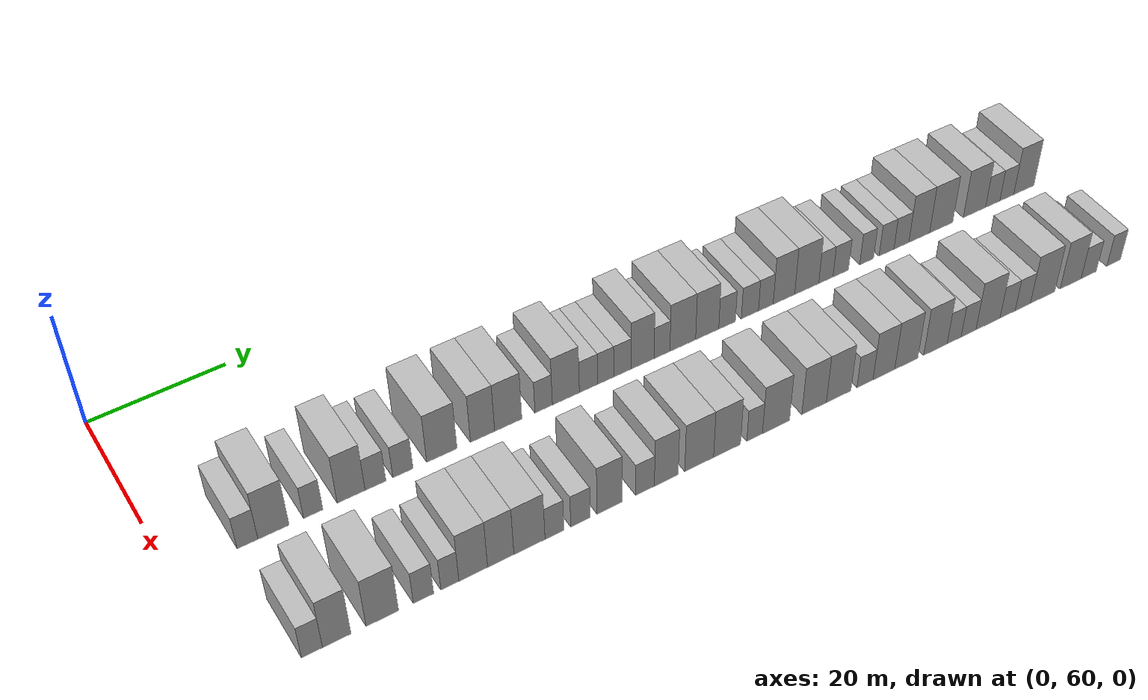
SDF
<sdf version="1.6">
 <world name="default">
  <model name="building_67">
   <static>1</static>
   <pose>25.0000 70.0338 0 0.000000 0.000000 0.000000</pose>
   <link name="link">
    <pose>0 0 3.00 0 0 0</pose>
    <collision name="collision"><geometry><box><size>10.0000 2.8254 6.0000</size></box></geometry></collision>
    <visual name="visual">
     <cast_shadows>0</cast_shadows>
     <geometry><box><size>10.0000 2.8254 6.0000</size></box></geometry>
     <material>
      <script>
       <uri>model://HANNAS_wall/materials/scripts</uri>
       <uri>model://HANNAS_wall/materials/textures</uri>
       <name>vrc/HANNAS_wall</name>
      </script>
     </material>
    </visual>
   </link>
  </model>
  <model name="building_68">
   <static>1</static>
   <pose>25.0000 73.5772 0 0.000000 0.000000 0.000000</pose>
   <link name="link">
    <pose>0 0 4.50 0 0 0</pose>
    <collision name="collision"><geometry><box><size>10.0000 4.2613 9.0000</size></box></geometry></collision>
    <visual name="visual">
     <cast_shadows>0</cast_shadows>
     <geometry><box><size>10.0000 4.2613 9.0000</size></box></geometry>
     <material>
      <script>
       <uri>model://HANNAS_wall/materials/scripts</uri>
       <uri>model://HANNAS_wall/materials/textures</uri>
       <name>vrc/HANNAS_wall</name>
      </script>
     </material>
    </visual>
   </link>
  </model>
  <model name="building_69">
   <static>1</static>
   <pose>25.0000 79.0530 0 0.000000 0.000000 0.000000</pose>
   <link name="link">
    <pose>0 0 3.00 0 0 0</pose>
    <collision name="collision"><geometry><box><size>10.0000 2.6903 6.0000</size></box></geometry></collision>
    <visual name="visual">
     <cast_shadows>0</cast_shadows>
     <geometry><box><size>10.0000 2.6903 6.0000</size></box></geometry>
     <material>
      <script>
       <uri>model://HANNAS_wall/materials/scripts</uri>
       <uri>model://HANNAS_wall/materials/textures</uri>
       <name>vrc/HANNAS_wall</name>
      </script>
     </material>
    </visual>
   </link>
  </model>
  <model name="building_70">
   <static>1</static>
   <pose>25.0000 84.3725 0 0.000000 0.000000 0.000000</pose>
   <link name="link">
    <pose>0 0 4.50 0 0 0</pose>
    <collision name="collision"><geometry><box><size>10.0000 3.9488 9.0000</size></box></geometry></collision>
    <visual name="visual">
     <cast_shadows>0</cast_shadows>
     <geometry><box><size>10.0000 3.9488 9.0000</size></box></geometry>
     <material>
      <script>
       <uri>model://HANNAS_wall/materials/scripts</uri>
       <uri>model://HANNAS_wall/materials/textures</uri>
       <name>vrc/HANNAS_wall</name>
      </script>
     </material>
    </visual>
   </link>
  </model>
  <model name="building_71">
   <static>1</static>
   <pose>25.0000 87.8342 0 0.000000 0.000000 0.000000</pose>
   <link name="link">
    <pose>0 0 3.00 0 0 0</pose>
    <collision name="collision"><geometry><box><size>10.0000 2.9744 6.0000</size></box></geometry></collision>
    <visual name="visual">
     <cast_shadows>0</cast_shadows>
     <geometry><box><size>10.0000 2.9744 6.0000</size></box></geometry>
     <material>
      <script>
       <uri>model://HANNAS_wall/materials/scripts</uri>
       <uri>model://HANNAS_wall/materials/textures</uri>
       <name>vrc/HANNAS_wall</name>
      </script>
     </material>
    </visual>
   </link>
  </model>
  <model name="building_72">
   <static>1</static>
   <pose>25.0000 91.7812 0 0.000000 0.000000 0.000000</pose>
   <link name="link">
    <pose>0 0 3.00 0 0 0</pose>
    <collision name="collision"><geometry><box><size>10.0000 2.9196 6.0000</size></box></geometry></collision>
    <visual name="visual">
     <cast_shadows>0</cast_shadows>
     <geometry><box><size>10.0000 2.9196 6.0000</size></box></geometry>
     <material>
      <script>
       <uri>model://HANNAS_wall/materials/scripts</uri>
       <uri>model://HANNAS_wall/materials/textures</uri>
       <name>vrc/HANNAS_wall</name>
      </script>
     </material>
    </visual>
   </link>
  </model>
  <model name="building_73">
   <static>1</static>
   <pose>25.0000 97.4727 0 0.000000 0.000000 0.000000</pose>
   <link name="link">
    <pose>0 0 4.50 0 0 0</pose>
    <collision name="collision"><geometry><box><size>10.0000 4.4634 9.0000</size></box></geometry></collision>
    <visual name="visual">
     <cast_shadows>0</cast_shadows>
     <geometry><box><size>10.0000 4.4634 9.0000</size></box></geometry>
     <material>
      <script>
       <uri>model://HANNAS_wall/materials/scripts</uri>
       <uri>model://HANNAS_wall/materials/textures</uri>
       <name>vrc/HANNAS_wall</name>
      </script>
     </material>
    </visual>
   </link>
  </model>
  <model name="building_74">
   <static>1</static>
   <pose>25.0000 103.5206 0 0.000000 0.000000 0.000000</pose>
   <link name="link">
    <pose>0 0 4.50 0 0 0</pose>
    <collision name="collision"><geometry><box><size>10.0000 3.6323 9.0000</size></box></geometry></collision>
    <visual name="visual">
     <cast_shadows>0</cast_shadows>
     <geometry><box><size>10.0000 3.6323 9.0000</size></box></geometry>
     <material>
      <script>
       <uri>model://HANNAS_wall/materials/scripts</uri>
       <uri>model://HANNAS_wall/materials/textures</uri>
       <name>vrc/HANNAS_wall</name>
      </script>
     </material>
    </visual>
   </link>
  </model>
  <model name="building_75">
   <static>1</static>
   <pose>25.0000 107.4009 0 0.000000 0.000000 0.000000</pose>
   <link name="link">
    <pose>0 0 4.50 0 0 0</pose>
    <collision name="collision"><geometry><box><size>10.0000 4.1283 9.0000</size></box></geometry></collision>
    <visual name="visual">
     <cast_shadows>0</cast_shadows>
     <geometry><box><size>10.0000 4.1283 9.0000</size></box></geometry>
     <material>
      <script>
       <uri>model://HANNAS_wall/materials/scripts</uri>
       <uri>model://HANNAS_wall/materials/textures</uri>
       <name>vrc/HANNAS_wall</name>
      </script>
     </material>
    </visual>
   </link>
  </model>
  <model name="building_76">
   <static>1</static>
   <pose>25.0000 112.8104 0 0.000000 0.000000 0.000000</pose>
   <link name="link">
    <pose>0 0 3.00 0 0 0</pose>
    <collision name="collision"><geometry><box><size>10.0000 2.6907 6.0000</size></box></geometry></collision>
    <visual name="visual">
     <cast_shadows>0</cast_shadows>
     <geometry><box><size>10.0000 2.6907 6.0000</size></box></geometry>
     <material>
      <script>
       <uri>model://HANNAS_wall/materials/scripts</uri>
       <uri>model://HANNAS_wall/materials/textures</uri>
       <name>vrc/HANNAS_wall</name>
      </script>
     </material>
    </visual>
   </link>
  </model>
  <model name="building_77">
   <static>1</static>
   <pose>25.0000 116.2598 0 0.000000 0.000000 0.000000</pose>
   <link name="link">
    <pose>0 0 4.50 0 0 0</pose>
    <collision name="collision"><geometry><box><size>10.0000 4.2081 9.0000</size></box></geometry></collision>
    <visual name="visual">
     <cast_shadows>0</cast_shadows>
     <geometry><box><size>10.0000 4.2081 9.0000</size></box></geometry>
     <material>
      <script>
       <uri>model://HANNAS_wall/materials/scripts</uri>
       <uri>model://HANNAS_wall/materials/textures</uri>
       <name>vrc/HANNAS_wall</name>
      </script>
     </material>
    </visual>
   </link>
  </model>
  <model name="building_78">
   <static>1</static>
   <pose>25.0000 119.8204 0 0.000000 0.000000 0.000000</pose>
   <link name="link">
    <pose>0 0 3.00 0 0 0</pose>
    <collision name="collision"><geometry><box><size>10.0000 2.9129 6.0000</size></box></geometry></collision>
    <visual name="visual">
     <cast_shadows>0</cast_shadows>
     <geometry><box><size>10.0000 2.9129 6.0000</size></box></geometry>
     <material>
      <script>
       <uri>model://HANNAS_wall/materials/scripts</uri>
       <uri>model://HANNAS_wall/materials/textures</uri>
       <name>vrc/HANNAS_wall</name>
      </script>
     </material>
    </visual>
   </link>
  </model>
  <model name="building_79">
   <static>1</static>
   <pose>25.0000 122.5388 0 0.000000 0.000000 0.000000</pose>
   <link name="link">
    <pose>0 0 3.00 0 0 0</pose>
    <collision name="collision"><geometry><box><size>10.0000 2.5240 6.0000</size></box></geometry></collision>
    <visual name="visual">
     <cast_shadows>0</cast_shadows>
     <geometry><box><size>10.0000 2.5240 6.0000</size></box></geometry>
     <material>
      <script>
       <uri>model://HANNAS_wall/materials/scripts</uri>
       <uri>model://HANNAS_wall/materials/textures</uri>
       <name>vrc/HANNAS_wall</name>
      </script>
     </material>
    </visual>
   </link>
  </model>
  <model name="building_80">
   <static>1</static>
   <pose>25.0000 125.2032 0 0.000000 0.000000 0.000000</pose>
   <link name="link">
    <pose>0 0 3.00 0 0 0</pose>
    <collision name="collision"><geometry><box><size>10.0000 2.8047 6.0000</size></box></geometry></collision>
    <visual name="visual">
     <cast_shadows>0</cast_shadows>
     <geometry><box><size>10.0000 2.8047 6.0000</size></box></geometry>
     <material>
      <script>
       <uri>model://HANNAS_wall/materials/scripts</uri>
       <uri>model://HANNAS_wall/materials/textures</uri>
       <name>vrc/HANNAS_wall</name>
      </script>
     </material>
    </visual>
   </link>
  </model>
  <model name="building_81">
   <static>1</static>
   <pose>25.0000 128.4523 0 0.000000 0.000000 0.000000</pose>
   <link name="link">
    <pose>0 0 4.50 0 0 0</pose>
    <collision name="collision"><geometry><box><size>10.0000 3.6936 9.0000</size></box></geometry></collision>
    <visual name="visual">
     <cast_shadows>0</cast_shadows>
     <geometry><box><size>10.0000 3.6936 9.0000</size></box></geometry>
     <material>
      <script>
       <uri>model://HANNAS_wall/materials/scripts</uri>
       <uri>model://HANNAS_wall/materials/textures</uri>
       <name>vrc/HANNAS_wall</name>
      </script>
     </material>
    </visual>
   </link>
  </model>
  <model name="building_82">
   <static>1</static>
   <pose>25.0000 131.5829 0 0.000000 0.000000 0.000000</pose>
   <link name="link">
    <pose>0 0 3.00 0 0 0</pose>
    <collision name="collision"><geometry><box><size>10.0000 2.5675 6.0000</size></box></geometry></collision>
    <visual name="visual">
     <cast_shadows>0</cast_shadows>
     <geometry><box><size>10.0000 2.5675 6.0000</size></box></geometry>
     <material>
      <script>
       <uri>model://HANNAS_wall/materials/scripts</uri>
       <uri>model://HANNAS_wall/materials/textures</uri>
       <name>vrc/HANNAS_wall</name>
      </script>
     </material>
    </visual>
   </link>
  </model>
  <model name="building_83">
   <static>1</static>
   <pose>25.0000 134.9808 0 0.000000 0.000000 0.000000</pose>
   <link name="link">
    <pose>0 0 4.50 0 0 0</pose>
    <collision name="collision"><geometry><box><size>10.0000 4.2282 9.0000</size></box></geometry></collision>
    <visual name="visual">
     <cast_shadows>0</cast_shadows>
     <geometry><box><size>10.0000 4.2282 9.0000</size></box></geometry>
     <material>
      <script>
       <uri>model://HANNAS_wall/materials/scripts</uri>
       <uri>model://HANNAS_wall/materials/textures</uri>
       <name>vrc/HANNAS_wall</name>
      </script>
     </material>
    </visual>
   </link>
  </model>
  <model name="building_84">
   <static>1</static>
   <pose>25.0000 139.0226 0 0.000000 0.000000 0.000000</pose>
   <link name="link">
    <pose>0 0 4.50 0 0 0</pose>
    <collision name="collision"><geometry><box><size>10.0000 3.8554 9.0000</size></box></geometry></collision>
    <visual name="visual">
     <cast_shadows>0</cast_shadows>
     <geometry><box><size>10.0000 3.8554 9.0000</size></box></geometry>
     <material>
      <script>
       <uri>model://HANNAS_wall/materials/scripts</uri>
       <uri>model://HANNAS_wall/materials/textures</uri>
       <name>vrc/HANNAS_wall</name>
      </script>
     </material>
    </visual>
   </link>
  </model>
  <model name="building_85">
   <static>1</static>
   <pose>25.0000 142.3522 0 0.000000 0.000000 0.000000</pose>
   <link name="link">
    <pose>0 0 3.00 0 0 0</pose>
    <collision name="collision"><geometry><box><size>10.0000 2.8039 6.0000</size></box></geometry></collision>
    <visual name="visual">
     <cast_shadows>0</cast_shadows>
     <geometry><box><size>10.0000 2.8039 6.0000</size></box></geometry>
     <material>
      <script>
       <uri>model://HANNAS_wall/materials/scripts</uri>
       <uri>model://HANNAS_wall/materials/textures</uri>
       <name>vrc/HANNAS_wall</name>
      </script>
     </material>
    </visual>
   </link>
  </model>
  <model name="building_86">
   <static>1</static>
   <pose>25.0000 146.2095 0 0.000000 0.000000 0.000000</pose>
   <link name="link">
    <pose>0 0 3.00 0 0 0</pose>
    <collision name="collision"><geometry><box><size>10.0000 2.9105 6.0000</size></box></geometry></collision>
    <visual name="visual">
     <cast_shadows>0</cast_shadows>
     <geometry><box><size>10.0000 2.9105 6.0000</size></box></geometry>
     <material>
      <script>
       <uri>model://HANNAS_wall/materials/scripts</uri>
       <uri>model://HANNAS_wall/materials/textures</uri>
       <name>vrc/HANNAS_wall</name>
      </script>
     </material>
    </visual>
   </link>
  </model>
  <model name="building_87">
   <static>1</static>
   <pose>25.0000 148.9270 0 0.000000 0.000000 0.000000</pose>
   <link name="link">
    <pose>0 0 3.00 0 0 0</pose>
    <collision name="collision"><geometry><box><size>10.0000 2.5246 6.0000</size></box></geometry></collision>
    <visual name="visual">
     <cast_shadows>0</cast_shadows>
     <geometry><box><size>10.0000 2.5246 6.0000</size></box></geometry>
     <material>
      <script>
       <uri>model://HANNAS_wall/materials/scripts</uri>
       <uri>model://HANNAS_wall/materials/textures</uri>
       <name>vrc/HANNAS_wall</name>
      </script>
     </material>
    </visual>
   </link>
  </model>
  <model name="building_88">
   <static>1</static>
   <pose>25.0000 152.0538 0 0.000000 0.000000 0.000000</pose>
   <link name="link">
    <pose>0 0 4.50 0 0 0</pose>
    <collision name="collision"><geometry><box><size>10.0000 3.7290 9.0000</size></box></geometry></collision>
    <visual name="visual">
     <cast_shadows>0</cast_shadows>
     <geometry><box><size>10.0000 3.7290 9.0000</size></box></geometry>
     <material>
      <script>
       <uri>model://HANNAS_wall/materials/scripts</uri>
       <uri>model://HANNAS_wall/materials/textures</uri>
       <name>vrc/HANNAS_wall</name>
      </script>
     </material>
    </visual>
   </link>
  </model>
  <model name="building_89">
   <static>1</static>
   <pose>25.0000 156.0157 0 0.000000 0.000000 0.000000</pose>
   <link name="link">
    <pose>0 0 4.50 0 0 0</pose>
    <collision name="collision"><geometry><box><size>10.0000 4.1948 9.0000</size></box></geometry></collision>
    <visual name="visual">
     <cast_shadows>0</cast_shadows>
     <geometry><box><size>10.0000 4.1948 9.0000</size></box></geometry>
     <material>
      <script>
       <uri>model://HANNAS_wall/materials/scripts</uri>
       <uri>model://HANNAS_wall/materials/textures</uri>
       <name>vrc/HANNAS_wall</name>
      </script>
     </material>
    </visual>
   </link>
  </model>
  <model name="building_90">
   <static>1</static>
   <pose>25.0000 159.3758 0 0.000000 0.000000 0.000000</pose>
   <link name="link">
    <pose>0 0 3.00 0 0 0</pose>
    <collision name="collision"><geometry><box><size>10.0000 2.5254 6.0000</size></box></geometry></collision>
    <visual name="visual">
     <cast_shadows>0</cast_shadows>
     <geometry><box><size>10.0000 2.5254 6.0000</size></box></geometry>
     <material>
      <script>
       <uri>model://HANNAS_wall/materials/scripts</uri>
       <uri>model://HANNAS_wall/materials/textures</uri>
       <name>vrc/HANNAS_wall</name>
      </script>
     </material>
    </visual>
   </link>
  </model>
  <model name="building_91">
   <static>1</static>
   <pose>25.0000 162.0163 0 0.000000 0.000000 0.000000</pose>
   <link name="link">
    <pose>0 0 3.00 0 0 0</pose>
    <collision name="collision"><geometry><box><size>10.0000 2.7554 6.0000</size></box></geometry></collision>
    <visual name="visual">
     <cast_shadows>0</cast_shadows>
     <geometry><box><size>10.0000 2.7554 6.0000</size></box></geometry>
     <material>
      <script>
       <uri>model://HANNAS_wall/materials/scripts</uri>
       <uri>model://HANNAS_wall/materials/textures</uri>
       <name>vrc/HANNAS_wall</name>
      </script>
     </material>
    </visual>
   </link>
  </model>
  <model name="building_92">
   <static>1</static>
   <pose>25.0000 166.6407 0 0.000000 0.000000 0.000000</pose>
   <link name="link">
    <pose>0 0 3.00 0 0 0</pose>
    <collision name="collision"><geometry><box><size>10.0000 2.4935 6.0000</size></box></geometry></collision>
    <visual name="visual">
     <cast_shadows>0</cast_shadows>
     <geometry><box><size>10.0000 2.4935 6.0000</size></box></geometry>
     <material>
      <script>
       <uri>model://HANNAS_wall/materials/scripts</uri>
       <uri>model://HANNAS_wall/materials/textures</uri>
       <name>vrc/HANNAS_wall</name>
      </script>
     </material>
    </visual>
   </link>
  </model>
  <model name="building_93">
   <static>1</static>
   <pose>25.0000 170.2398 0 0.000000 0.000000 0.000000</pose>
   <link name="link">
    <pose>0 0 3.00 0 0 0</pose>
    <collision name="collision"><geometry><box><size>10.0000 2.7046 6.0000</size></box></geometry></collision>
    <visual name="visual">
     <cast_shadows>0</cast_shadows>
     <geometry><box><size>10.0000 2.7046 6.0000</size></box></geometry>
     <material>
      <script>
       <uri>model://HANNAS_wall/materials/scripts</uri>
       <uri>model://HANNAS_wall/materials/textures</uri>
       <name>vrc/HANNAS_wall</name>
      </script>
     </material>
    </visual>
   </link>
  </model>
  <model name="building_94">
   <static>1</static>
   <pose>25.0000 172.9611 0 0.000000 0.000000 0.000000</pose>
   <link name="link">
    <pose>0 0 3.00 0 0 0</pose>
    <collision name="collision"><geometry><box><size>10.0000 2.7381 6.0000</size></box></geometry></collision>
    <visual name="visual">
     <cast_shadows>0</cast_shadows>
     <geometry><box><size>10.0000 2.7381 6.0000</size></box></geometry>
     <material>
      <script>
       <uri>model://HANNAS_wall/materials/scripts</uri>
       <uri>model://HANNAS_wall/materials/textures</uri>
       <name>vrc/HANNAS_wall</name>
      </script>
     </material>
    </visual>
   </link>
  </model>
  <model name="building_95">
   <static>1</static>
   <pose>25.0000 176.2452 0 0.000000 0.000000 0.000000</pose>
   <link name="link">
    <pose>0 0 4.50 0 0 0</pose>
    <collision name="collision"><geometry><box><size>10.0000 3.8300 9.0000</size></box></geometry></collision>
    <visual name="visual">
     <cast_shadows>0</cast_shadows>
     <geometry><box><size>10.0000 3.8300 9.0000</size></box></geometry>
     <material>
      <script>
       <uri>model://HANNAS_wall/materials/scripts</uri>
       <uri>model://HANNAS_wall/materials/textures</uri>
       <name>vrc/HANNAS_wall</name>
      </script>
     </material>
    </visual>
   </link>
  </model>
  <model name="building_96">
   <static>1</static>
   <pose>25.0000 180.3242 0 0.000000 0.000000 0.000000</pose>
   <link name="link">
    <pose>0 0 4.50 0 0 0</pose>
    <collision name="collision"><geometry><box><size>10.0000 4.3279 9.0000</size></box></geometry></collision>
    <visual name="visual">
     <cast_shadows>0</cast_shadows>
     <geometry><box><size>10.0000 4.3279 9.0000</size></box></geometry>
     <material>
      <script>
       <uri>model://HANNAS_wall/materials/scripts</uri>
       <uri>model://HANNAS_wall/materials/textures</uri>
       <name>vrc/HANNAS_wall</name>
      </script>
     </material>
    </visual>
   </link>
  </model>
  <model name="building_97">
   <static>1</static>
   <pose>25.0000 186.5988 0 0.000000 0.000000 0.000000</pose>
   <link name="link">
    <pose>0 0 4.50 0 0 0</pose>
    <collision name="collision"><geometry><box><size>10.0000 4.2214 9.0000</size></box></geometry></collision>
    <visual name="visual">
     <cast_shadows>0</cast_shadows>
     <geometry><box><size>10.0000 4.2214 9.0000</size></box></geometry>
     <material>
      <script>
       <uri>model://HANNAS_wall/materials/scripts</uri>
       <uri>model://HANNAS_wall/materials/textures</uri>
       <name>vrc/HANNAS_wall</name>
      </script>
     </material>
    </visual>
   </link>
  </model>
  <model name="building_98">
   <static>1</static>
   <pose>25.0000 190.0728 0 0.000000 0.000000 0.000000</pose>
   <link name="link">
    <pose>0 0 3.00 0 0 0</pose>
    <collision name="collision"><geometry><box><size>10.0000 2.7266 6.0000</size></box></geometry></collision>
    <visual name="visual">
     <cast_shadows>0</cast_shadows>
     <geometry><box><size>10.0000 2.7266 6.0000</size></box></geometry>
     <material>
      <script>
       <uri>model://HANNAS_wall/materials/scripts</uri>
       <uri>model://HANNAS_wall/materials/textures</uri>
       <name>vrc/HANNAS_wall</name>
      </script>
     </material>
    </visual>
   </link>
  </model>
  <model name="building_99">
   <static>1</static>
   <pose>25.0000 192.7881 0 0.000000 0.000000 0.000000</pose>
   <link name="link">
    <pose>0 0 3.00 0 0 0</pose>
    <collision name="collision"><geometry><box><size>10.0000 2.7040 6.0000</size></box></geometry></collision>
    <visual name="visual">
     <cast_shadows>0</cast_shadows>
     <geometry><box><size>10.0000 2.7040 6.0000</size></box></geometry>
     <material>
      <script>
       <uri>model://HANNAS_wall/materials/scripts</uri>
       <uri>model://HANNAS_wall/materials/textures</uri>
       <name>vrc/HANNAS_wall</name>
      </script>
     </material>
    </visual>
   </link>
  </model>
  <model name="building_100">
   <static>1</static>
   <pose>25.0000 196.1115 0 0.000000 0.000000 0.000000</pose>
   <link name="link">
    <pose>0 0 4.50 0 0 0</pose>
    <collision name="collision"><geometry><box><size>10.0000 3.9429 9.0000</size></box></geometry></collision>
    <visual name="visual">
     <cast_shadows>0</cast_shadows>
     <geometry><box><size>10.0000 3.9429 9.0000</size></box></geometry>
     <material>
      <script>
       <uri>model://HANNAS_wall/materials/scripts</uri>
       <uri>model://HANNAS_wall/materials/textures</uri>
       <name>vrc/HANNAS_wall</name>
      </script>
     </material>
    </visual>
   </link>
  </model>
  <model name="building_165">
   <static>1</static>
   <pose>44.0000 69.9899 0 0.000000 0.000000 0.000000</pose>
   <link name="link">
    <pose>0 0 3.00 0 0 0</pose>
    <collision name="collision"><geometry><box><size>10.0000 2.7499 6.0000</size></box></geometry></collision>
    <visual name="visual">
     <cast_shadows>0</cast_shadows>
     <geometry><box><size>10.0000 2.7499 6.0000</size></box></geometry>
     <material>
      <script>
       <uri>model://HANNAS_wall/materials/scripts</uri>
       <uri>model://HANNAS_wall/materials/textures</uri>
       <name>vrc/HANNAS_wall</name>
      </script>
     </material>
    </visual>
   </link>
  </model>
  <model name="building_166">
   <static>1</static>
   <pose>44.0000 73.2424 0 0.000000 0.000000 0.000000</pose>
   <link name="link">
    <pose>0 0 4.50 0 0 0</pose>
    <collision name="collision"><geometry><box><size>10.0000 3.7551 9.0000</size></box></geometry></collision>
    <visual name="visual">
     <cast_shadows>0</cast_shadows>
     <geometry><box><size>10.0000 3.7551 9.0000</size></box></geometry>
     <material>
      <script>
       <uri>model://HANNAS_wall/materials/scripts</uri>
       <uri>model://HANNAS_wall/materials/textures</uri>
       <name>vrc/HANNAS_wall</name>
      </script>
     </material>
    </visual>
   </link>
  </model>
  <model name="building_167">
   <static>1</static>
   <pose>44.0000 79.3093 0 0.000000 0.000000 0.000000</pose>
   <link name="link">
    <pose>0 0 4.50 0 0 0</pose>
    <collision name="collision"><geometry><box><size>10.0000 4.3788 9.0000</size></box></geometry></collision>
    <visual name="visual">
     <cast_shadows>0</cast_shadows>
     <geometry><box><size>10.0000 4.3788 9.0000</size></box></geometry>
     <material>
      <script>
       <uri>model://HANNAS_wall/materials/scripts</uri>
       <uri>model://HANNAS_wall/materials/textures</uri>
       <name>vrc/HANNAS_wall</name>
      </script>
     </material>
    </visual>
   </link>
  </model>
  <model name="building_168">
   <static>1</static>
   <pose>44.0000 84.8970 0 0.000000 0.000000 0.000000</pose>
   <link name="link">
    <pose>0 0 3.00 0 0 0</pose>
    <collision name="collision"><geometry><box><size>10.0000 2.7966 6.0000</size></box></geometry></collision>
    <visual name="visual">
     <cast_shadows>0</cast_shadows>
     <geometry><box><size>10.0000 2.7966 6.0000</size></box></geometry>
     <material>
      <script>
       <uri>model://HANNAS_wall/materials/scripts</uri>
       <uri>model://HANNAS_wall/materials/textures</uri>
       <name>vrc/HANNAS_wall</name>
      </script>
     </material>
    </visual>
   </link>
  </model>
  <model name="building_169">
   <static>1</static>
   <pose>44.0000 88.5407 0 0.000000 0.000000 0.000000</pose>
   <link name="link">
    <pose>0 0 3.00 0 0 0</pose>
    <collision name="collision"><geometry><box><size>10.0000 2.4908 6.0000</size></box></geometry></collision>
    <visual name="visual">
     <cast_shadows>0</cast_shadows>
     <geometry><box><size>10.0000 2.4908 6.0000</size></box></geometry>
     <material>
      <script>
       <uri>model://HANNAS_wall/materials/scripts</uri>
       <uri>model://HANNAS_wall/materials/textures</uri>
       <name>vrc/HANNAS_wall</name>
      </script>
     </material>
    </visual>
   </link>
  </model>
  <model name="building_170">
   <static>1</static>
   <pose>44.0000 91.7995 0 0.000000 0.000000 0.000000</pose>
   <link name="link">
    <pose>0 0 4.50 0 0 0</pose>
    <collision name="collision"><geometry><box><size>10.0000 4.0267 9.0000</size></box></geometry></collision>
    <visual name="visual">
     <cast_shadows>0</cast_shadows>
     <geometry><box><size>10.0000 4.0267 9.0000</size></box></geometry>
     <material>
      <script>
       <uri>model://HANNAS_wall/materials/scripts</uri>
       <uri>model://HANNAS_wall/materials/textures</uri>
       <name>vrc/HANNAS_wall</name>
      </script>
     </material>
    </visual>
   </link>
  </model>
  <model name="building_171">
   <static>1</static>
   <pose>44.0000 95.6774 0 0.000000 0.000000 0.000000</pose>
   <link name="link">
    <pose>0 0 4.50 0 0 0</pose>
    <collision name="collision"><geometry><box><size>10.0000 3.7291 9.0000</size></box></geometry></collision>
    <visual name="visual">
     <cast_shadows>0</cast_shadows>
     <geometry><box><size>10.0000 3.7291 9.0000</size></box></geometry>
     <material>
      <script>
       <uri>model://HANNAS_wall/materials/scripts</uri>
       <uri>model://HANNAS_wall/materials/textures</uri>
       <name>vrc/HANNAS_wall</name>
      </script>
     </material>
    </visual>
   </link>
  </model>
  <model name="building_172">
   <static>1</static>
   <pose>44.0000 99.7819 0 0.000000 0.000000 0.000000</pose>
   <link name="link">
    <pose>0 0 4.50 0 0 0</pose>
    <collision name="collision"><geometry><box><size>10.0000 4.4797 9.0000</size></box></geometry></collision>
    <visual name="visual">
     <cast_shadows>0</cast_shadows>
     <geometry><box><size>10.0000 4.4797 9.0000</size></box></geometry>
     <material>
      <script>
       <uri>model://HANNAS_wall/materials/scripts</uri>
       <uri>model://HANNAS_wall/materials/textures</uri>
       <name>vrc/HANNAS_wall</name>
      </script>
     </material>
    </visual>
   </link>
  </model>
  <model name="building_173">
   <static>1</static>
   <pose>44.0000 103.3914 0 0.000000 0.000000 0.000000</pose>
   <link name="link">
    <pose>0 0 3.00 0 0 0</pose>
    <collision name="collision"><geometry><box><size>10.0000 2.7394 6.0000</size></box></geometry></collision>
    <visual name="visual">
     <cast_shadows>0</cast_shadows>
     <geometry><box><size>10.0000 2.7394 6.0000</size></box></geometry>
     <material>
      <script>
       <uri>model://HANNAS_wall/materials/scripts</uri>
       <uri>model://HANNAS_wall/materials/textures</uri>
       <name>vrc/HANNAS_wall</name>
      </script>
     </material>
    </visual>
   </link>
  </model>
  <model name="building_174">
   <static>1</static>
   <pose>44.0000 107.2010 0 0.000000 0.000000 0.000000</pose>
   <link name="link">
    <pose>0 0 3.00 0 0 0</pose>
    <collision name="collision"><geometry><box><size>10.0000 2.8796 6.0000</size></box></geometry></collision>
    <visual name="visual">
     <cast_shadows>0</cast_shadows>
     <geometry><box><size>10.0000 2.8796 6.0000</size></box></geometry>
     <material>
      <script>
       <uri>model://HANNAS_wall/materials/scripts</uri>
       <uri>model://HANNAS_wall/materials/textures</uri>
       <name>vrc/HANNAS_wall</name>
      </script>
     </material>
    </visual>
   </link>
  </model>
  <model name="building_175">
   <static>1</static>
   <pose>44.0000 111.5287 0 0.000000 0.000000 0.000000</pose>
   <link name="link">
    <pose>0 0 4.50 0 0 0</pose>
    <collision name="collision"><geometry><box><size>10.0000 3.7758 9.0000</size></box></geometry></collision>
    <visual name="visual">
     <cast_shadows>0</cast_shadows>
     <geometry><box><size>10.0000 3.7758 9.0000</size></box></geometry>
     <material>
      <script>
       <uri>model://HANNAS_wall/materials/scripts</uri>
       <uri>model://HANNAS_wall/materials/textures</uri>
       <name>vrc/HANNAS_wall</name>
      </script>
     </material>
    </visual>
   </link>
  </model>
  <model name="building_176">
   <static>1</static>
   <pose>44.0000 116.8384 0 0.000000 0.000000 0.000000</pose>
   <link name="link">
    <pose>0 0 3.00 0 0 0</pose>
    <collision name="collision"><geometry><box><size>10.0000 2.8436 6.0000</size></box></geometry></collision>
    <visual name="visual">
     <cast_shadows>0</cast_shadows>
     <geometry><box><size>10.0000 2.8436 6.0000</size></box></geometry>
     <material>
      <script>
       <uri>model://HANNAS_wall/materials/scripts</uri>
       <uri>model://HANNAS_wall/materials/textures</uri>
       <name>vrc/HANNAS_wall</name>
      </script>
     </material>
    </visual>
   </link>
  </model>
  <model name="building_177">
   <static>1</static>
   <pose>44.0000 120.0829 0 0.000000 0.000000 0.000000</pose>
   <link name="link">
    <pose>0 0 4.50 0 0 0</pose>
    <collision name="collision"><geometry><box><size>10.0000 3.6452 9.0000</size></box></geometry></collision>
    <visual name="visual">
     <cast_shadows>0</cast_shadows>
     <geometry><box><size>10.0000 3.6452 9.0000</size></box></geometry>
     <material>
      <script>
       <uri>model://HANNAS_wall/materials/scripts</uri>
       <uri>model://HANNAS_wall/materials/textures</uri>
       <name>vrc/HANNAS_wall</name>
      </script>
     </material>
    </visual>
   </link>
  </model>
  <model name="building_178">
   <static>1</static>
   <pose>44.0000 125.1528 0 0.000000 0.000000 0.000000</pose>
   <link name="link">
    <pose>0 0 4.50 0 0 0</pose>
    <collision name="collision"><geometry><box><size>10.0000 4.4946 9.0000</size></box></geometry></collision>
    <visual name="visual">
     <cast_shadows>0</cast_shadows>
     <geometry><box><size>10.0000 4.4946 9.0000</size></box></geometry>
     <material>
      <script>
       <uri>model://HANNAS_wall/materials/scripts</uri>
       <uri>model://HANNAS_wall/materials/textures</uri>
       <name>vrc/HANNAS_wall</name>
      </script>
     </material>
    </visual>
   </link>
  </model>
  <model name="building_179">
   <static>1</static>
   <pose>44.0000 129.5226 0 0.000000 0.000000 0.000000</pose>
   <link name="link">
    <pose>0 0 4.50 0 0 0</pose>
    <collision name="collision"><geometry><box><size>10.0000 4.2451 9.0000</size></box></geometry></collision>
    <visual name="visual">
     <cast_shadows>0</cast_shadows>
     <geometry><box><size>10.0000 4.2451 9.0000</size></box></geometry>
     <material>
      <script>
       <uri>model://HANNAS_wall/materials/scripts</uri>
       <uri>model://HANNAS_wall/materials/textures</uri>
       <name>vrc/HANNAS_wall</name>
      </script>
     </material>
    </visual>
   </link>
  </model>
  <model name="building_180">
   <static>1</static>
   <pose>44.0000 133.8965 0 0.000000 0.000000 0.000000</pose>
   <link name="link">
    <pose>0 0 3.00 0 0 0</pose>
    <collision name="collision"><geometry><box><size>10.0000 2.5027 6.0000</size></box></geometry></collision>
    <visual name="visual">
     <cast_shadows>0</cast_shadows>
     <geometry><box><size>10.0000 2.5027 6.0000</size></box></geometry>
     <material>
      <script>
       <uri>model://HANNAS_wall/materials/scripts</uri>
       <uri>model://HANNAS_wall/materials/textures</uri>
       <name>vrc/HANNAS_wall</name>
      </script>
     </material>
    </visual>
   </link>
  </model>
  <model name="building_181">
   <static>1</static>
   <pose>44.0000 137.3396 0 0.000000 0.000000 0.000000</pose>
   <link name="link">
    <pose>0 0 4.50 0 0 0</pose>
    <collision name="collision"><geometry><box><size>10.0000 4.3833 9.0000</size></box></geometry></collision>
    <visual name="visual">
     <cast_shadows>0</cast_shadows>
     <geometry><box><size>10.0000 4.3833 9.0000</size></box></geometry>
     <material>
      <script>
       <uri>model://HANNAS_wall/materials/scripts</uri>
       <uri>model://HANNAS_wall/materials/textures</uri>
       <name>vrc/HANNAS_wall</name>
      </script>
     </material>
    </visual>
   </link>
  </model>
  <model name="building_182">
   <static>1</static>
   <pose>44.0000 143.5479 0 0.000000 0.000000 0.000000</pose>
   <link name="link">
    <pose>0 0 4.50 0 0 0</pose>
    <collision name="collision"><geometry><box><size>10.0000 4.0334 9.0000</size></box></geometry></collision>
    <visual name="visual">
     <cast_shadows>0</cast_shadows>
     <geometry><box><size>10.0000 4.0334 9.0000</size></box></geometry>
     <material>
      <script>
       <uri>model://HANNAS_wall/materials/scripts</uri>
       <uri>model://HANNAS_wall/materials/textures</uri>
       <name>vrc/HANNAS_wall</name>
      </script>
     </material>
    </visual>
   </link>
  </model>
  <model name="building_183">
   <static>1</static>
   <pose>44.0000 147.6163 0 0.000000 0.000000 0.000000</pose>
   <link name="link">
    <pose>0 0 4.50 0 0 0</pose>
    <collision name="collision"><geometry><box><size>10.0000 4.1034 9.0000</size></box></geometry></collision>
    <visual name="visual">
     <cast_shadows>0</cast_shadows>
     <geometry><box><size>10.0000 4.1034 9.0000</size></box></geometry>
     <material>
      <script>
       <uri>model://HANNAS_wall/materials/scripts</uri>
       <uri>model://HANNAS_wall/materials/textures</uri>
       <name>vrc/HANNAS_wall</name>
      </script>
     </material>
    </visual>
   </link>
  </model>
  <model name="building_184">
   <static>1</static>
   <pose>44.0000 152.0263 0 0.000000 0.000000 0.000000</pose>
   <link name="link">
    <pose>0 0 3.00 0 0 0</pose>
    <collision name="collision"><geometry><box><size>10.0000 2.7167 6.0000</size></box></geometry></collision>
    <visual name="visual">
     <cast_shadows>0</cast_shadows>
     <geometry><box><size>10.0000 2.7167 6.0000</size></box></geometry>
     <material>
      <script>
       <uri>model://HANNAS_wall/materials/scripts</uri>
       <uri>model://HANNAS_wall/materials/textures</uri>
       <name>vrc/HANNAS_wall</name>
      </script>
     </material>
    </visual>
   </link>
  </model>
  <model name="building_185">
   <static>1</static>
   <pose>44.0000 155.2350 0 0.000000 0.000000 0.000000</pose>
   <link name="link">
    <pose>0 0 4.50 0 0 0</pose>
    <collision name="collision"><geometry><box><size>10.0000 3.7008 9.0000</size></box></geometry></collision>
    <visual name="visual">
     <cast_shadows>0</cast_shadows>
     <geometry><box><size>10.0000 3.7008 9.0000</size></box></geometry>
     <material>
      <script>
       <uri>model://HANNAS_wall/materials/scripts</uri>
       <uri>model://HANNAS_wall/materials/textures</uri>
       <name>vrc/HANNAS_wall</name>
      </script>
     </material>
    </visual>
   </link>
  </model>
  <model name="building_186">
   <static>1</static>
   <pose>44.0000 159.0761 0 0.000000 0.000000 0.000000</pose>
   <link name="link">
    <pose>0 0 4.50 0 0 0</pose>
    <collision name="collision"><geometry><box><size>10.0000 3.9814 9.0000</size></box></geometry></collision>
    <visual name="visual">
     <cast_shadows>0</cast_shadows>
     <geometry><box><size>10.0000 3.9814 9.0000</size></box></geometry>
     <material>
      <script>
       <uri>model://HANNAS_wall/materials/scripts</uri>
       <uri>model://HANNAS_wall/materials/textures</uri>
       <name>vrc/HANNAS_wall</name>
      </script>
     </material>
    </visual>
   </link>
  </model>
  <model name="building_187">
   <static>1</static>
   <pose>44.0000 164.1213 0 0.000000 0.000000 0.000000</pose>
   <link name="link">
    <pose>0 0 4.50 0 0 0</pose>
    <collision name="collision"><geometry><box><size>10.0000 4.1091 9.0000</size></box></geometry></collision>
    <visual name="visual">
     <cast_shadows>0</cast_shadows>
     <geometry><box><size>10.0000 4.1091 9.0000</size></box></geometry>
     <material>
      <script>
       <uri>model://HANNAS_wall/materials/scripts</uri>
       <uri>model://HANNAS_wall/materials/textures</uri>
       <name>vrc/HANNAS_wall</name>
      </script>
     </material>
    </visual>
   </link>
  </model>
  <model name="building_188">
   <static>1</static>
   <pose>44.0000 167.4103 0 0.000000 0.000000 0.000000</pose>
   <link name="link">
    <pose>0 0 3.00 0 0 0</pose>
    <collision name="collision"><geometry><box><size>10.0000 2.4688 6.0000</size></box></geometry></collision>
    <visual name="visual">
     <cast_shadows>0</cast_shadows>
     <geometry><box><size>10.0000 2.4688 6.0000</size></box></geometry>
     <material>
      <script>
       <uri>model://HANNAS_wall/materials/scripts</uri>
       <uri>model://HANNAS_wall/materials/textures</uri>
       <name>vrc/HANNAS_wall</name>
      </script>
     </material>
    </visual>
   </link>
  </model>
  <model name="building_189">
   <static>1</static>
   <pose>44.0000 169.9647 0 0.000000 0.000000 0.000000</pose>
   <link name="link">
    <pose>0 0 3.00 0 0 0</pose>
    <collision name="collision"><geometry><box><size>10.0000 2.6400 6.0000</size></box></geometry></collision>
    <visual name="visual">
     <cast_shadows>0</cast_shadows>
     <geometry><box><size>10.0000 2.6400 6.0000</size></box></geometry>
     <material>
      <script>
       <uri>model://HANNAS_wall/materials/scripts</uri>
       <uri>model://HANNAS_wall/materials/textures</uri>
       <name>vrc/HANNAS_wall</name>
      </script>
     </material>
    </visual>
   </link>
  </model>
  <model name="building_190">
   <static>1</static>
   <pose>44.0000 173.4437 0 0.000000 0.000000 0.000000</pose>
   <link name="link">
    <pose>0 0 4.50 0 0 0</pose>
    <collision name="collision"><geometry><box><size>10.0000 4.3179 9.0000</size></box></geometry></collision>
    <visual name="visual">
     <cast_shadows>0</cast_shadows>
     <geometry><box><size>10.0000 4.3179 9.0000</size></box></geometry>
     <material>
      <script>
       <uri>model://HANNAS_wall/materials/scripts</uri>
       <uri>model://HANNAS_wall/materials/textures</uri>
       <name>vrc/HANNAS_wall</name>
      </script>
     </material>
    </visual>
   </link>
  </model>
  <model name="building_191">
   <static>1</static>
   <pose>44.0000 176.9825 0 0.000000 0.000000 0.000000</pose>
   <link name="link">
    <pose>0 0 3.00 0 0 0</pose>
    <collision name="collision"><geometry><box><size>10.0000 2.7598 6.0000</size></box></geometry></collision>
    <visual name="visual">
     <cast_shadows>0</cast_shadows>
     <geometry><box><size>10.0000 2.7598 6.0000</size></box></geometry>
     <material>
      <script>
       <uri>model://HANNAS_wall/materials/scripts</uri>
       <uri>model://HANNAS_wall/materials/textures</uri>
       <name>vrc/HANNAS_wall</name>
      </script>
     </material>
    </visual>
   </link>
  </model>
  <model name="building_192">
   <static>1</static>
   <pose>44.0000 179.7594 0 0.000000 0.000000 0.000000</pose>
   <link name="link">
    <pose>0 0 3.00 0 0 0</pose>
    <collision name="collision"><geometry><box><size>10.0000 2.7939 6.0000</size></box></geometry></collision>
    <visual name="visual">
     <cast_shadows>0</cast_shadows>
     <geometry><box><size>10.0000 2.7939 6.0000</size></box></geometry>
     <material>
      <script>
       <uri>model://HANNAS_wall/materials/scripts</uri>
       <uri>model://HANNAS_wall/materials/textures</uri>
       <name>vrc/HANNAS_wall</name>
      </script>
     </material>
    </visual>
   </link>
  </model>
  <model name="building_193">
   <static>1</static>
   <pose>44.0000 183.4001 0 0.000000 0.000000 0.000000</pose>
   <link name="link">
    <pose>0 0 4.50 0 0 0</pose>
    <collision name="collision"><geometry><box><size>10.0000 4.4875 9.0000</size></box></geometry></collision>
    <visual name="visual">
     <cast_shadows>0</cast_shadows>
     <geometry><box><size>10.0000 4.4875 9.0000</size></box></geometry>
     <material>
      <script>
       <uri>model://HANNAS_wall/materials/scripts</uri>
       <uri>model://HANNAS_wall/materials/textures</uri>
       <name>vrc/HANNAS_wall</name>
      </script>
     </material>
    </visual>
   </link>
  </model>
  <model name="building_194">
   <static>1</static>
   <pose>44.0000 188.6129 0 0.000000 0.000000 0.000000</pose>
   <link name="link">
    <pose>0 0 4.50 0 0 0</pose>
    <collision name="collision"><geometry><box><size>10.0000 3.9380 9.0000</size></box></geometry></collision>
    <visual name="visual">
     <cast_shadows>0</cast_shadows>
     <geometry><box><size>10.0000 3.9380 9.0000</size></box></geometry>
     <material>
      <script>
       <uri>model://HANNAS_wall/materials/scripts</uri>
       <uri>model://HANNAS_wall/materials/textures</uri>
       <name>vrc/HANNAS_wall</name>
      </script>
     </material>
    </visual>
   </link>
  </model>
  <model name="building_195">
   <static>1</static>
   <pose>44.0000 192.0145 0 0.000000 0.000000 0.000000</pose>
   <link name="link">
    <pose>0 0 3.00 0 0 0</pose>
    <collision name="collision"><geometry><box><size>10.0000 2.8652 6.0000</size></box></geometry></collision>
    <visual name="visual">
     <cast_shadows>0</cast_shadows>
     <geometry><box><size>10.0000 2.8652 6.0000</size></box></geometry>
     <material>
      <script>
       <uri>model://HANNAS_wall/materials/scripts</uri>
       <uri>model://HANNAS_wall/materials/textures</uri>
       <name>vrc/HANNAS_wall</name>
      </script>
     </material>
    </visual>
   </link>
  </model>
  <model name="building_196">
   <static>1</static>
   <pose>44.0000 196.7577 0 0.000000 0.000000 0.000000</pose>
   <link name="link">
    <pose>0 0 3.00 0 0 0</pose>
    <collision name="collision"><geometry><box><size>10.0000 2.6213 6.0000</size></box></geometry></collision>
    <visual name="visual">
     <cast_shadows>0</cast_shadows>
     <geometry><box><size>10.0000 2.6213 6.0000</size></box></geometry>
     <material>
      <script>
       <uri>model://HANNAS_wall/materials/scripts</uri>
       <uri>model://HANNAS_wall/materials/textures</uri>
       <name>vrc/HANNAS_wall</name>
      </script>
     </material>
    </visual>
   </link>
  </model>
 </world>
</sdf>
